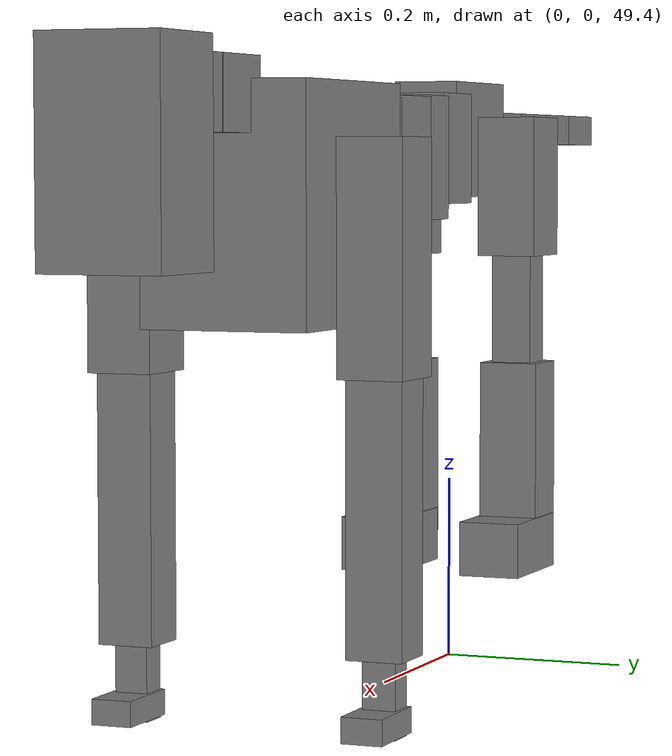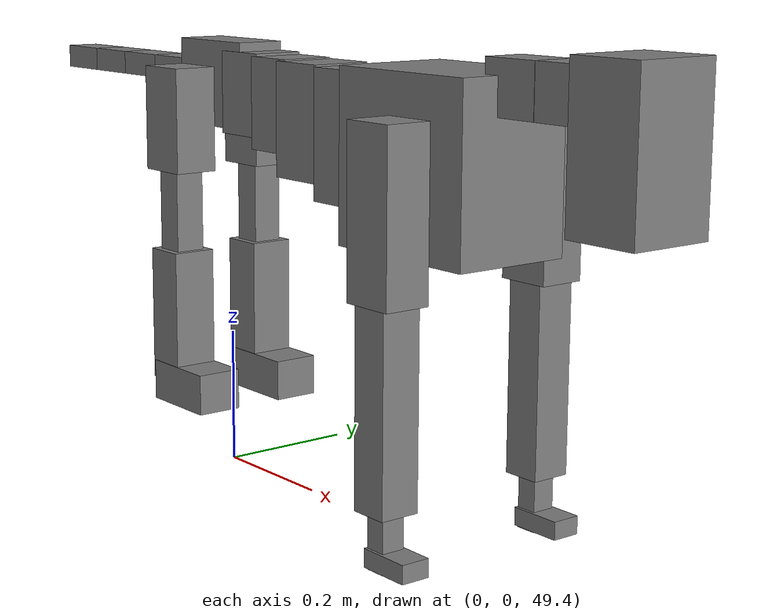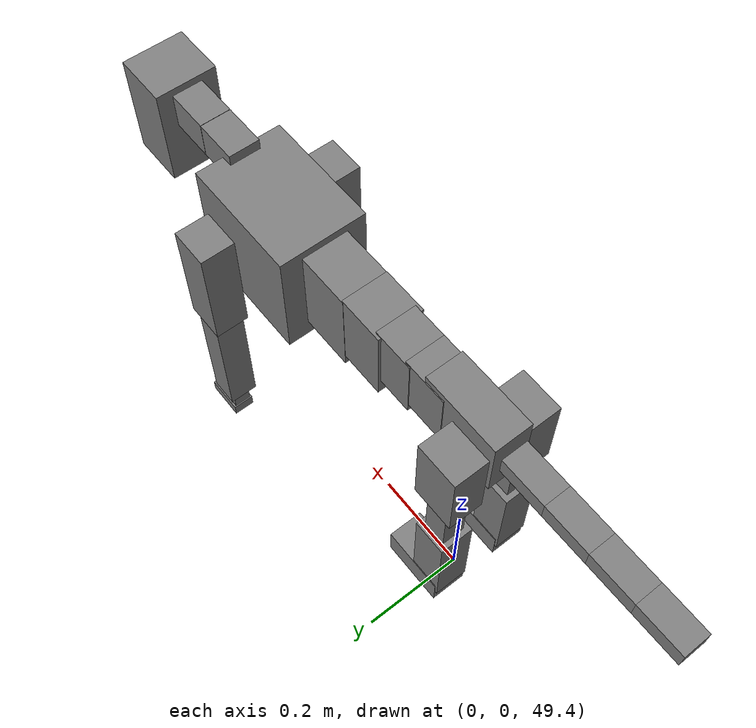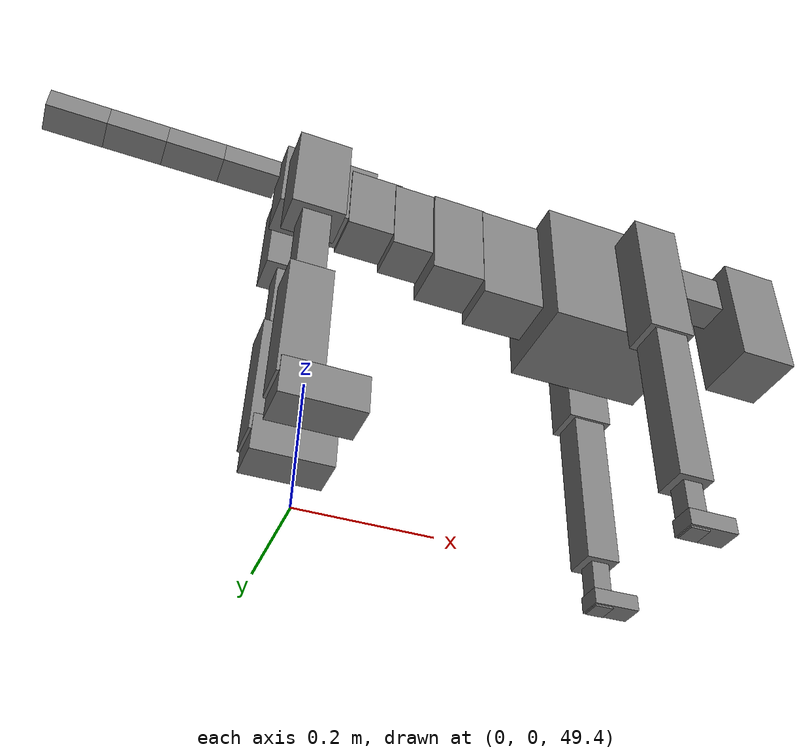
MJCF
<mujoco model="dog">

    <default>
        <joint armature="0.02" stiffness="1" damping="0.2" limited="true"/>
        <geom condim="3" friction="1 0.05 0.05" margin="0.01"/>
        <motor ctrllimited="true" ctrlrange="-1.0 1.0" forcelimited="true" gear="50"/>
    </default>

    <compiler inertiafromgeom="true" angle="radian"/>

    <option timestep="0.016" iterations="50" tolerance="1e-10" solver="Newton" jacobian="dense" cone="pyramidal"/>

    <size nconmax="20000" njmax="60000" nstack="5000000"/>
    <visual>
        <map force="0.1" zfar="30"/>
        <rgba haze="0.15 0.25 0.35 1"/>
        <quality shadowsize="2048"/>
        <global offwidth="800" offheight="800"/>
    </visual>

    <asset>
        <texture type="skybox" builtin="gradient" rgb1="0.3 0.5 0.7" rgb2="0 0 0" width="512" height="512"/>
        <texture name="texplane" type="2d" builtin="checker" rgb1=".2 .3 .4" rgb2=".1 0.15 0.2" width="512" height="512"
                 mark="cross" markrgb=".8 .8 .8"/>
        <texture name="texgeom" type="cube" builtin="flat" mark="cross" width="127" height="1278" rgb1="0.8 0.6 0.4"
                 rgb2="0.8 0.6 0.4" markrgb="1 1 1" random="0.01"/>

        <material name="matplane" reflectance="0.3" texture="texplane" texrepeat="1 1" texuniform="true"/>
        <material name="matgeom" texture="texgeom" texuniform="true" rgba="0.8 0.6 .4 1"/>
    </asset>

    <worldbody>
        <geom name="floor" pos="0 0 0" size="0 0 .25" type="plane" material="matplane" condim="3"/>

        <light directional="false" diffuse=".2 .2 .2" specular="0 0 0" pos="0 0 5" dir="0 0 -1" castshadow="false"/>
        <light mode="targetbodycom" target="torso" directional="false" diffuse=".8 .8 .8" specular="0.3 0.3 0.3"
               pos="0 0 4.0" dir="0 0 -1"/>

        <body name="root" pos="0 0 50">
            <freejoint name="root_1"/>
            <geom type="box" pos="0 0 -0.02" size="0.0774  0.0358  0.063" density="2030"/>

            <body name="spine1" pos="0.054 0 0">
                <joint name="spine1_y" axis="0 1 0" range="0 0.7" limited="true"/>
                <geom type="box" pos="0.02375 0 -0.03" size="0.04375  0.0375  0.05985" density="2030"/>

                <body name="spine2" pos="0.0612 0 0">
                    <joint name="spine2_y" axis="0 1 0" range="-0.15 0.15" limited="true"/>
                    <geom type="box" pos="0.03555  0  -0.04" size="0.04055  0.039  0.06615" density="2030"/>

                    <body name="spine3" pos="0.0730 0 0">
                        <joint name="spine3_y" axis="0 1 0" range="-0.15 0.15" limited="true"/>
                        <geom type="box" pos="0.03555  0  -0.057" size="0.04555  0.0445  0.081" density="2030"/>

                        <body name="spine4" pos="0.0780 0 0">
                            <joint name="spine4_y" axis="0 1 0" range="-0.15 0.15" limited="true"/>
                            <geom type="box" pos="0.05265  0  -0.07" size="0.05265  0.045  0.09135" density="2030"/>

                            <body name="torso" pos="0.1082 0 0">
                                <joint name="torso_y" axis="0 1 0" range="-0.15 0.15" limited="true"/>
                                <geom type="box" pos="0.11925  0  -0.085" size="0.11925  0.085  0.11745"
                                      density="2030"/>

                                <body name="neck1" pos="0.2160  0   0.0180">
                                    <joint name="neck1_y" axis="0 1 0" range="-1.2  -1" limited="true"/>
                                    <geom type="box" pos="0.0423  0  0" size="0.0423  0.03  0.036" density="2325"/>

                                    <body name="neck2" pos="0.0853  0  0">
                                        <joint name="neck2_y" axis="0 1 0" range="0.1  0" limited="true"/>
                                        <geom type="box" pos="0.0423  0  0" size="0.0423  0.03  0.036" density="2325"/>

                                        <body name="head" pos="0.0853  0  0">
                                            <joint name="head_y" axis="0 1 0" range="-0.3  -0.2" limited="true"/>
                                            <geom type="box" pos="0.0531  0  -0.055" size="0.0531  0.06  0.1044"
                                                  density="4030"/>

                                        </body>
                                    </body>
                                </body>

                                <body name="front_shoulder" pos="0.156  0   -0.0480">
                                    <joint name="front_shoulder_y" axis="0 1 0" range="-1 1.5" limited="true"/>
                                    <geom type="box" pos="0 0.13 -0.0868" size="0.0386  0.0330  0.1135" density="1158"/>
                                    <geom type="box" pos="0 -0.13 -0.0868" size="0.0386  0.0330  0.1135"
                                          density="1158"/>

                                    <body name="front_elbow" pos="0  0  -0.1736">
                                        <joint name="front_elbow_y" axis="0 1 0" range="-2 0" limited="true"/>
                                        <geom type="box" pos="0 0.13 -0.1464" size="0.0278  0.0284  0.1464"
                                              density="1081"/>
                                        <geom type="box" pos="0 -0.13 -0.1464" size="0.0278  0.0284  0.1464"
                                              density="1081"/>

                                        <body name="front_wrist" pos="0  0  -0.2927">
                                            <joint name="front_wrist_y" axis="0 1 0" range="-0.2 0" limited="true"/>
                                            <geom type="box" pos="0 0.13 -0.0316" size="0.0151  0.0168  0.0447"
                                                  density="1664"/>
                                            <geom type="box" pos="0 -0.13 -0.0316" size="0.0151  0.0168  0.0447"
                                                  density="1664"/>

                                            <body name="front_finger_end" pos="0  0  -0.0631">
                                                <joint name="front_finger_y" axis="0 1 0" range="-0.4 1"
                                                       limited="true"/>
                                                <geom type="box" pos="0.0208  0.13  0.0023"
                                                      size="0.0381  0.0208  0.0127" density="1515"/>
                                                <geom type="box" pos="0.0208  -0.13  0.0023"
                                                      size="0.0381  0.0208  0.0127" density="1515"/>

                                            </body>

                                        </body>
                                    </body>
                                </body>

                            </body>
                        </body>
                    </body>
                </body>
            </body>

            <body name="back_hip" pos="-0.03 0 -0.018">
                <joint name="back_hip_y" axis="0 1 0" range="-1.5 0.3" limited="true"/>
                <geom type="box" pos="0 0.07 -0.0539" size="0.0417  0.0327  0.0767" density="1154"/>
                <geom type="box" pos="0 -0.07 -0.0539" size="0.0417  0.0327  0.0767" density="1154"/>

                <body name="back_knee" pos="0  0  -0.1079">
                    <joint name="back_knee_y" axis="0 1 0" range="0 2.8" limited="true"/>
                    <geom type="box" pos="0 0.07 -0.0766" size="0.0224  0.0221  0.0922" density="1227"/>
                    <geom type="box" pos="0 -0.07 -0.0766" size="0.0224  0.0221  0.0922" density="1227"/>

                    <body name="back_ankle" pos="0  0  -0.1533">
                        <joint name="back_ankle_y" axis="0 1 0" range="-2.2 0" limited="true"/>
                        <geom type="box" pos="0 0.07 -0.0881" size="0.0327  0.0327  0.0993" density="1284"/>
                        <geom type="box" pos="0 -0.07 -0.0881" size="0.0327  0.0327  0.0993" density="1284"/>

                        <body name="back_toe_end" pos="0  0  -0.1762">
                            <joint name="back_toe_y" axis="0 1 0" range="-0.4 1" limited="true"/>
                            <geom type="box" pos="0.0339  0.07  -0.0148" size="0.0621  0.0339  0.0298" density="1515"/>
                            <geom type="box" pos="0.0339  -0.07  -0.0148" size="0.0621  0.0339  0.0298" density="1515"/>

                        </body>
                    </body>
                </body>
            </body>

            <body name="tail1" pos="-0.074 0 -0.006">
                <joint name="tail1_y" axis="0 1 0" range="-0.2 0.2" limited="true"/>
                <geom type="box" pos="-0.0536  0  0" size="0.045  0.025  0.0175" density="1587"/>

                <body name="tail2" pos="-0.09 0 0">
                    <joint name="tail2_y" axis="0 1 0" range="-0.2 0.2" limited="true"/>
                    <geom type="box" pos="-0.0536  0  0" size="0.045  0.025  0.0175" density="1587"/>

                    <body name="tail3" pos="-0.09 0 0">
                        <joint name="tail3_y" axis="0 1 0" range="-0.2 0.2" limited="true"/>
                        <geom type="box" pos="-0.0536  0  0" size="0.045  0.025  0.0175" density="1587"/>

                        <body name="tail4" pos="-0.09 0 0">
                            <joint name="tail4_y" axis="0 1 0" range="-0.2 0.2" limited="true"/>
                            <geom type="box" pos="-0.0536  0  0" size="0.045  0.025  0.0175" density="1587"/>

                        </body>
                    </body>
                </body>
            </body>
        </body>
    </worldbody>

    <actuator>
        <motor joint="spine1_y" forcerange="-150 150     "/>
        <motor joint="spine2_y" forcerange="-150 150     "/>
        <motor joint="spine3_y" forcerange="-150 150     "/>
        <motor joint="spine4_y" forcerange="-150 150     "/>
        <motor joint="torso_y" forcerange="-150 150     "/>
        <motor joint="neck1_y" forcerange="-100 100       "/>
        <motor joint="neck2_y" forcerange="-100 100       "/>
        <motor joint="head_y" forcerange="-150 150       "/>
        <motor joint="front_shoulder_y" forcerange="-145.53 174.56"/>
        <motor joint="front_elbow_y" forcerange="-182.07 124.66"/>
        <motor joint="front_wrist_y" forcerange="-80.49 54.05"/>
        <motor joint="front_finger_y" forcerange="-29.94 41.04"/>
        <motor joint="back_hip_y" forcerange="-399.81 235.96"/>
        <motor joint="back_knee_y" forcerange="-211.96 309.03"/>
        <motor joint="back_angle_y" forcerange="-208.80 214.60"/>
        <motor joint="back_toe_y" forcerange="-64.63 126.34"/>
        <motor joint="tail1_y" forcerange="-50 50     "/>
        <motor joint="tail2_y" forcerange="-50 50     "/>
        <motor joint="tail3_y" forcerange="-50 50     "/>
        <motor joint="tail4_y" forcerange="-50 50     "/>
    </actuator>
</mujoco>
